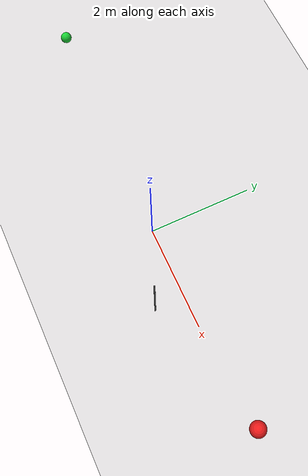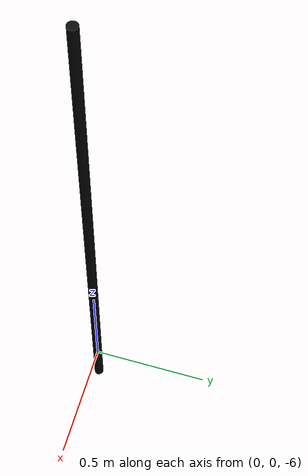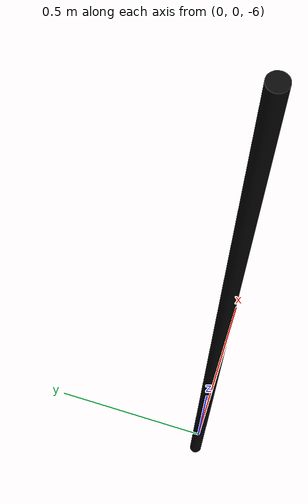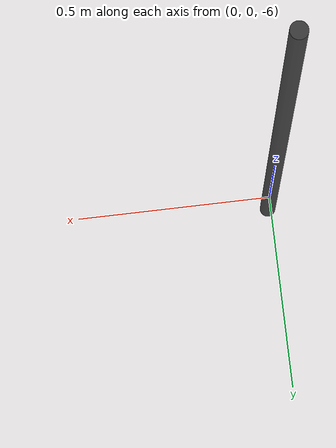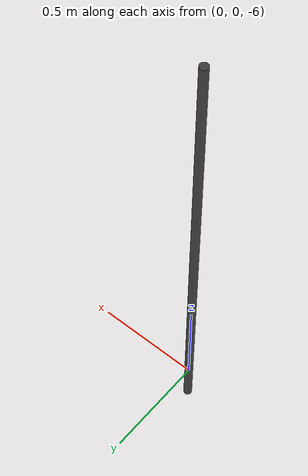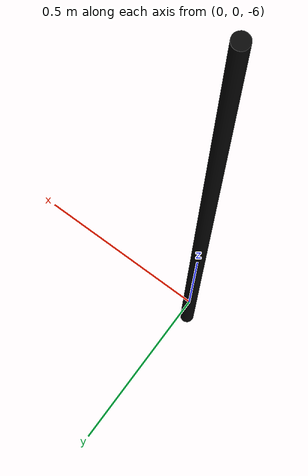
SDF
<?xml version="1.0" ?>
<sdf version="1.9">
  <world name="wire_training_world">
    <physics name="training_physics" type="ignored">
      <max_step_size>0.004</max_step_size>
      <real_time_factor>1.0</real_time_factor>
    </physics>
    <gravity>0 0 -9.81</gravity>
    <magnetic_field>6e-06 2.3e-05 -4.2e-05</magnetic_field>
    <atmosphere type="adiabatic"/>

    <plugin filename="gz-sim-physics-system" name="gz::sim::systems::Physics"/>
    <plugin filename="gz-sim-user-commands-system" name="gz::sim::systems::UserCommands"/>
    <plugin filename="gz-sim-scene-broadcaster-system" name="gz::sim::systems::SceneBroadcaster"/>
    <plugin filename="gz-sim-contact-system" name="gz::sim::systems::Contact"/>
    <plugin filename="gz-sim-imu-system" name="gz::sim::systems::Imu"/>
    <plugin filename="gz-sim-air-pressure-system" name="gz::sim::systems::AirPressure"/>
    <plugin filename="gz-sim-air-speed-system" name="gz::sim::systems::AirSpeed"/>
    <plugin filename="gz-sim-apply-link-wrench-system" name="gz::sim::systems::ApplyLinkWrench"/>
    <plugin filename="gz-sim-navsat-system" name="gz::sim::systems::NavSat"/>
    <plugin filename="gz-sim-magnetometer-system" name="gz::sim::systems::Magnetometer"/>
    <plugin filename="gz-sim-sensors-system" name="gz::sim::systems::Sensors">
      <render_engine>ogre2</render_engine>
    </plugin>
    <plugin filename="libOpticalFlowSystem.so" name="custom::OpticalFlowSystem"/>
    <plugin filename="libGstCameraSystem.so" name="custom::GstCameraSystem"/>

    <scene>
      <ambient>0.45 0.45 0.45 1</ambient>
      <background>0.82 0.9 1.0 1</background>
      <shadows>true</shadows>
    </scene>
    <light name="sun" type="directional">
      <cast_shadows>true</cast_shadows>
      <pose>0 0 10 0 0 0</pose>
      <diffuse>0.8 0.8 0.8 1</diffuse>
      <specular>0.2 0.2 0.2 1</specular>
      <direction>-0.4 0.3 -1</direction>
    </light>

    <model name="ground_plane">
      <static>true</static>
      <link name="ground_link">
        <collision name="ground_collision">
          <geometry><plane><normal>0 0 1</normal><size>30 20</size></plane></geometry>
        </collision>
        <visual name="ground_visual">
          <geometry><plane><normal>0 0 1</normal><size>30 20</size></plane></geometry>
          <material>
            <ambient>0.65 0.65 0.65 1</ambient>
            <diffuse>0.65 0.65 0.65 1</diffuse>
          </material>
        </visual>
      </link>
    </model>

    <!-- The environment relocates and rotates these fixed-length wires per episode. -->
    <model name="wire_obstacle">
      <static>true</static>
      <pose>0 0 -5 0 0 0</pose>
      <link name="wire_link">
        <collision name="wire_collision">
          <geometry><cylinder><radius>0.02</radius><length>2.4</length></cylinder></geometry>
        </collision>
        <visual name="wire_visual">
          <geometry><cylinder><radius>0.02</radius><length>2.4</length></cylinder></geometry>
          <material>
            <ambient>0.03 0.03 0.03 1</ambient>
            <diffuse>0.03 0.03 0.03 1</diffuse>
          </material>
        </visual>
      </link>
    </model>

    <model name="wire_obstacle_1">
      <static>true</static>
      <pose>0 0 -5 0 0 0</pose>
      <link name="wire_link">
        <collision name="wire_collision">
          <geometry><cylinder><radius>0.02</radius><length>2.4</length></cylinder></geometry>
        </collision>
        <visual name="wire_visual">
          <geometry><cylinder><radius>0.02</radius><length>2.4</length></cylinder></geometry>
          <material>
            <ambient>0.03 0.03 0.03 1</ambient>
            <diffuse>0.03 0.03 0.03 1</diffuse>
          </material>
        </visual>
      </link>
    </model>

    <model name="wire_obstacle_2">
      <static>true</static>
      <pose>0 0 -5 0 0 0</pose>
      <link name="wire_link">
        <collision name="wire_collision">
          <geometry><cylinder><radius>0.02</radius><length>2.4</length></cylinder></geometry>
        </collision>
        <visual name="wire_visual">
          <geometry><cylinder><radius>0.02</radius><length>2.4</length></cylinder></geometry>
          <material>
            <ambient>0.03 0.03 0.03 1</ambient>
            <diffuse>0.03 0.03 0.03 1</diffuse>
          </material>
        </visual>
      </link>
    </model>

    <model name="start_marker">
      <static>true</static>
      <pose>-4 0 1 0 0 0</pose>
      <link name="start_link">
        <visual name="start_visual">
          <geometry><sphere><radius>0.1</radius></sphere></geometry>
          <material><ambient>0.1 0.8 0.2 1</ambient><diffuse>0.1 0.8 0.2 1</diffuse></material>
        </visual>
      </link>
    </model>

    <model name="goal_marker">
      <static>true</static>
      <pose>4 0 1 0 0 0</pose>
      <link name="goal_link">
        <visual name="goal_visual">
          <geometry><sphere><radius>0.14</radius></sphere></geometry>
          <material><ambient>0.9 0.1 0.1 1</ambient><diffuse>0.9 0.1 0.1 1</diffuse></material>
        </visual>
      </link>
    </model>

    <spherical_coordinates>
      <surface_model>EARTH_WGS84</surface_model>
      <world_frame_orientation>ENU</world_frame_orientation>
      <latitude_deg>47.397971057728974</latitude_deg>
      <longitude_deg>8.546163739800146</longitude_deg>
      <elevation>0</elevation>
    </spherical_coordinates>
  </world>
</sdf>
